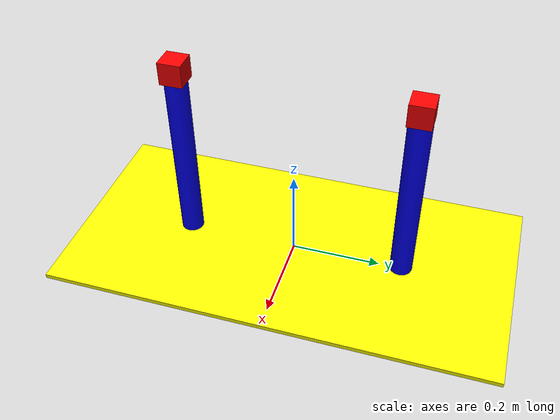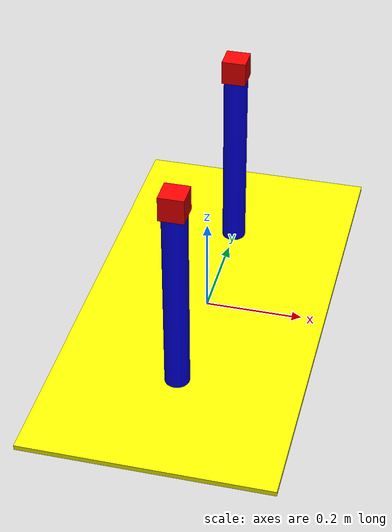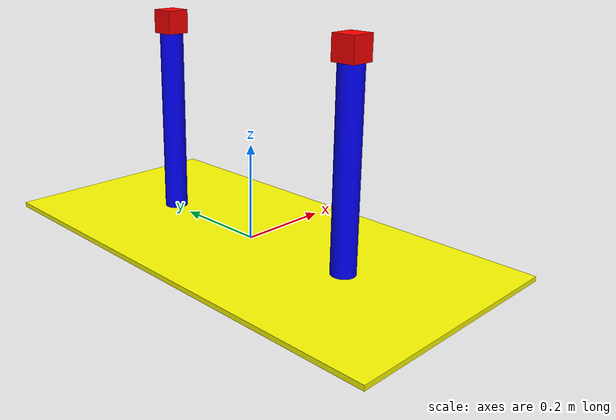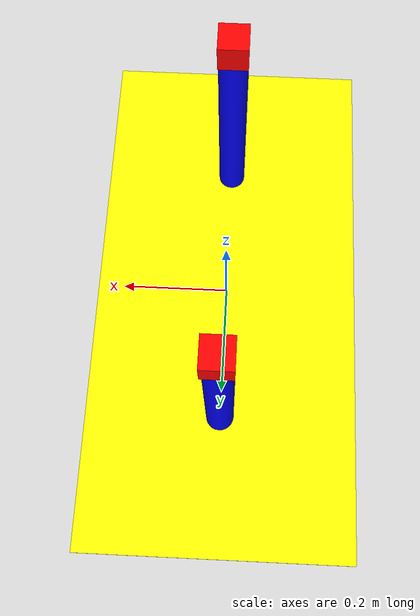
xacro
<?xml version="1.0"?>
<robot name="test_cameras" xmlns:xacro="http://www.ros.org/wiki/xacro">

  <material name="yellow">
    <color rgba="1 1 0 1"/>
  </material>
  <material name="red">
    <color rgba="1 0 0 1"/>
  </material>
  <material name="blue">
    <color rgba="0 0 1 1" />
  </material>
  <gazebo reference="base_link">
    <material>Gazebo/Yellow</material>
  </gazebo>

  <xacro:macro name="pan_camera" params="name y_offset">
    <link name="${name}_link">
      <visual>
        <geometry>
          <cylinder length="0.4" radius="0.025"/>
        </geometry>
        <material name="blue" />
      </visual>
      <collision>
        <geometry>
          <cylinder length="0.4" radius="0.04"/>
        </geometry>
        <origin rpy="0 0 0" xyz="0 0 0.09"/>
      </collision>
      <inertial>
        <mass value="1" />
        <inertia ixx="1." ixy="0.0" ixz="0.0" iyy="1." iyz="0.0" izz="1." />
      </inertial>
    </link>

    <joint name="${name}_joint" type="revolute">
      <origin xyz="0 ${y_offset} 0.2"/>
      <axis xyz="0 0 1" />
      <parent link="base_link"/>
      <child link="${name}_link"/>
      <limit effort="300" velocity="0.1" lower="-3.14" upper="3.14"/>
      <dynamics damping="50" friction="1"/>
    </joint>

    <!-- Camera -->
    <link name="${name}_camera">
      <collision>
        <origin xyz="0 0 0" rpy="0 0 0"/>
        <geometry>
          <box size="0.05 0.05 0.05"/>
        </geometry>
      </collision>
      <visual>
        <origin xyz="0 0 0" rpy="0 0 0"/>
        <geometry>
          <box size="0.05 0.05 0.05"/>
        </geometry>
        <material name="red"/>
      </visual>
      <inertial>
        <mass value="1e-5" />
        <origin xyz="0 0 0" rpy="0 0 0"/>
        <inertia ixx="1e-6" ixy="0" ixz="0" iyy="1e-6" iyz="0" izz="1e-6" />
      </inertial>
    </link>

    <joint name="${name}_cam_joint" type="fixed">
      <origin xyz="0 0 0.225" rpy="0 0 0"/>
      <parent link="${name}_link"/>
      <child link="${name}_camera"/>
    </joint>

    <gazebo reference="${name}_link">
      <material>Gazebo/Blue</material>
    </gazebo>
    <gazebo reference="${name}_camera">
      <material>Gazebo/Red</material>
    </gazebo>

    <!-- Transmission block -->
    <transmission name="tran_${name}">
      <type>transmission_interface/SimpleTransmission</type>
      <joint name="${name}_joint">
        <hardwareInterface>hardware_interface/PositionJointInterface</hardwareInterface>
      </joint>
      <actuator name="motor_${name}">
        <hardwareInterface>hardware_interface/PositionJointInterface</hardwareInterface>
        <mechanicalReduction>1</mechanicalReduction>
      </actuator>
    </transmission>

    <!-- Gazebo camera plugin -->
    <gazebo reference="${name}_camera">
      <sensor type="camera" name="${name}_camera">
        <update_rate>30.0</update_rate>
        <camera name="${name}_camera">
          <horizontal_fov>1.3962634</horizontal_fov>
          <image>
            <width>320</width>
            <height>240</height>
            <format>R8G8B8</format>
          </image>
          <clip>
            <near>0.02</near>
            <far>300</far>
          </clip>
          <noise>
            <type>gaussian</type>
              <!-- Noise is sampled independently per pixel on each frame.
                That pixel's noise value is added to each of its color
              channels, which at that point lie in the range [0,1]. -->
            <mean>0.0</mean>
            <stddev>0.007</stddev>
          </noise>
        </camera>
        <plugin name="camera_controller" filename="libgazebo_ros_camera.so">
          <alwaysOn>true</alwaysOn>
          <updateRate>0.0</updateRate>
          <cameraName>test_camera/${name}_camera</cameraName>
          <imageTopicName>image_raw</imageTopicName>
          <cameraInfoTopicName>camera_info</cameraInfoTopicName>
          <frameName>camera</frameName>
          <hackBaseline>0.07</hackBaseline>
          <distortionK1>0.0</distortionK1>
          <distortionK2>0.0</distortionK2>
          <distortionK3>0.0</distortionK3>
          <distortionT1>0.0</distortionT1>
          <distortionT2>0.0</distortionT2>
        </plugin>
        <visualize>true</visualize>
      </sensor>
    </gazebo>
  </xacro:macro>

  <link name="base_link">
    <visual>
      <geometry>
        <box size="0.50 1.00 0.01"/>
      </geometry>
      <origin rpy="0 0 0" xyz="0 0 0"/>
      <material name="yellow" />
    </visual>
    <collision>
      <geometry>
        <box size="1.00 0.50 0.01"/>
      </geometry>
      <origin rpy="0 0 0" xyz="0 0 0"/>
    </collision>
    <inertial>
      <mass value="1" />
      <inertia ixx="1." ixy="0.0" ixz="0.0" iyy="1." iyz="0.0" izz="1." />
    </inertial>
  </link>

  <xacro:pan_camera name="left" y_offset="0.25" />
  <xacro:pan_camera name="right" y_offset="-0.25" />

  <gazebo>
    <plugin name="gazebo_ros_control" filename="libgazebo_ros_control.so">
      <robotNamespace>/test_cameras</robotNamespace>
    </plugin>
  </gazebo>

</robot>
